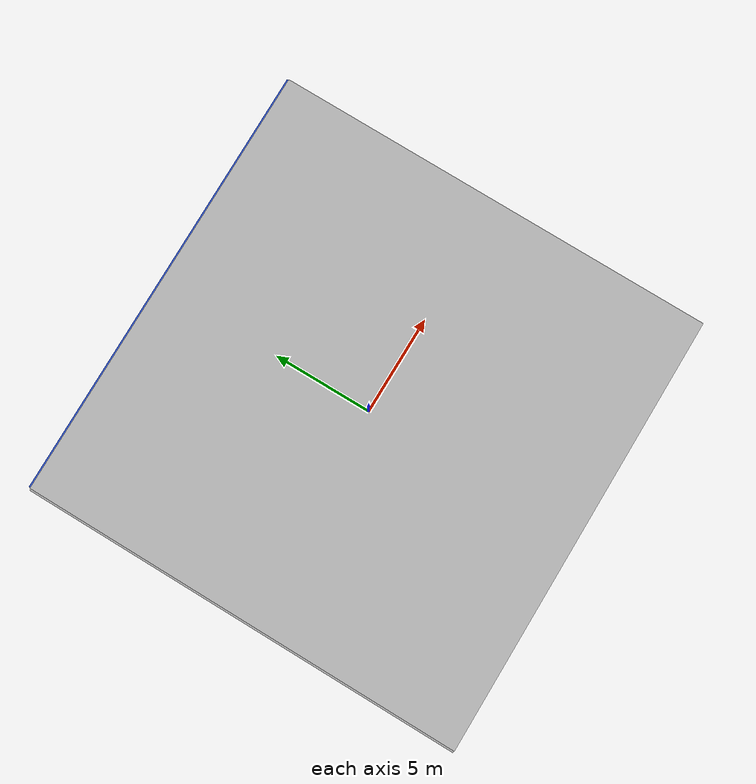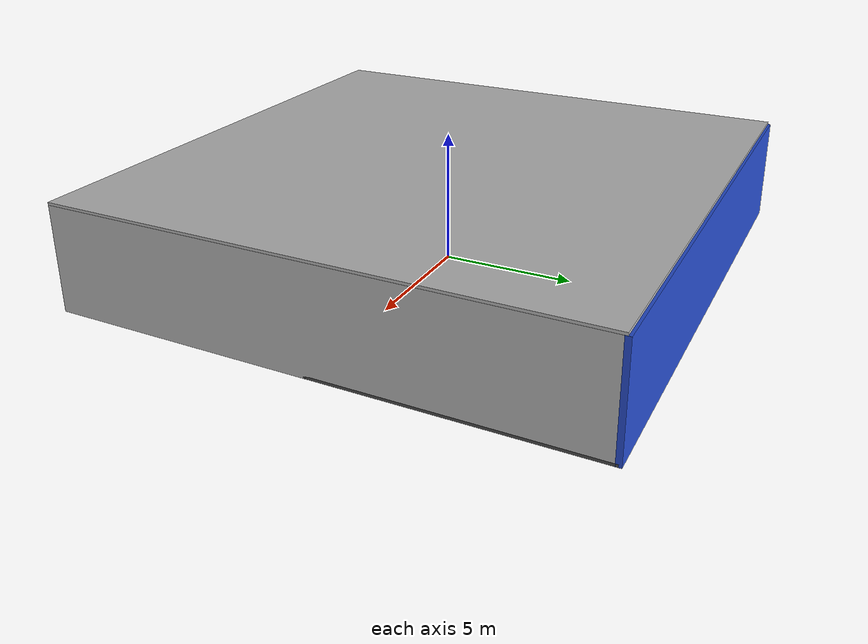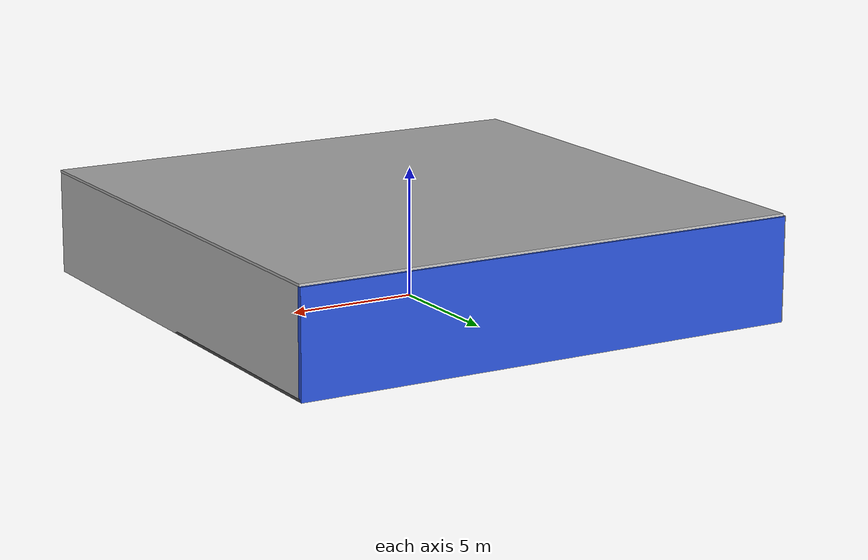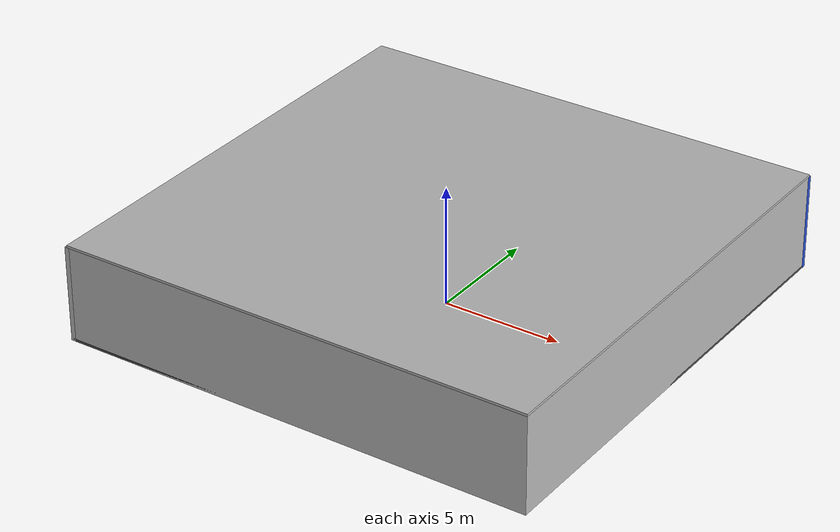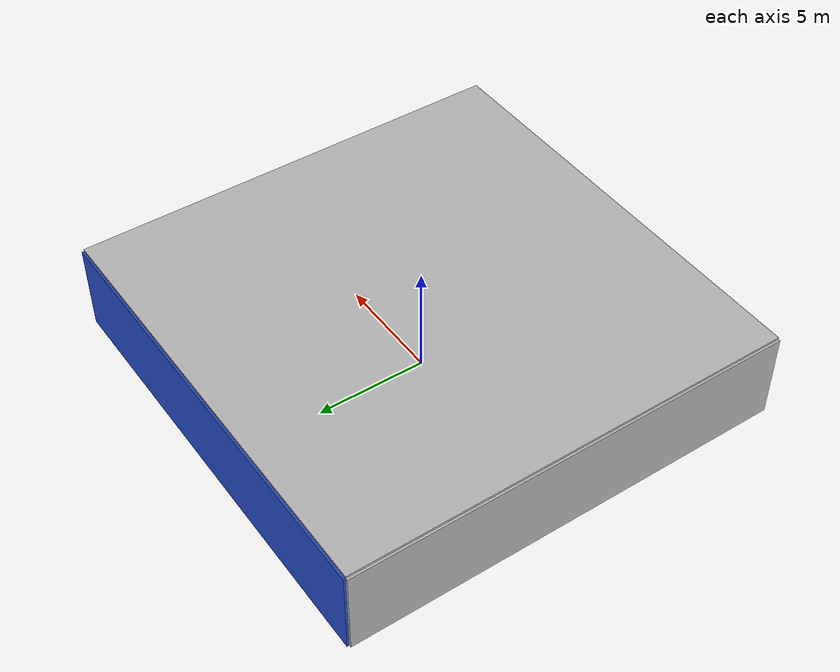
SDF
<sdf version="1.4">
 <world name="default">
  <physics type="ode">
   <max_step_size>0.001</max_step_size>
   <real_time_factor>1</real_time_factor>
   <real_time_update_rate>1000</real_time_update_rate>
   <gravity>0 0 -9.8</gravity>
  </physics>
  <scene><ambient>0.4 0.4 0.4 1</ambient><background>0.7 0.7 0.7 1</background><shadows>1</shadows></scene>
  <model name="Surrounding">
   <static>1</static>
   <link name="Ceiling">
    <collision name="Ceiling_Collision"><geometry><box><size>20 20 0.1</size></box></geometry></collision>
    <visual name="Ceiling_Visual">
     <geometry><box><size>20 20 0.1</size></box></geometry>
     <material>
      <script><uri>file://media/materials/scripts/gazebo.material</uri><name>Gazebo/Pioneer2Body</name></script>
     </material>
    </visual>
    <pose>0 0 4.05 0 0 0</pose>
   </link>
   <link name="Wall_South">
    <collision name="Wall_South_Collision">
     <geometry><box><size>20 0 4</size></box></geometry>
     <pose>0 0 2 0 -0 0</pose>
    </collision>
    <visual name="Wall_South_Visual">
     <pose>0 0 2 0 -0 0</pose>
     <geometry><box><size>20 0 4</size></box></geometry>
     <material>
      <script><uri>file://media/materials/scripts/gazebo.material</uri><name>Gazebo/PioneerBody</name></script>
     </material>
    </visual>
    <velocity_decay><linear>0</linear><angular>0</angular></velocity_decay>
    <pose>0 -10 0 0 -0 0</pose>
   </link>
   <link name="Wall_East">
    <collision name="Wall_21_Collision">
     <geometry><box><size>20 0 4</size></box></geometry>
     <pose>0 0 2 0 -0 0</pose>
    </collision>
    <visual name="Wall_21_Visual">
     <pose>0 0 2 0 -0 0</pose>
     <geometry><box><size>20 0 4</size></box></geometry>
     <material>
      <script><uri>file://media/materials/scripts/gazebo.material</uri><name>Gazebo/PioneerBody</name></script>
     </material>
    </visual>
    <velocity_decay><linear>0</linear><angular>0</angular></velocity_decay>
    <pose>10 0 0 0 -0 1.5708</pose>
   </link>
   <link name="Wall_North">
    <collision name="Wall_22_Collision">
     <geometry><box><size>20 0.2 4</size></box></geometry>
     <pose>0 0 2 0 -0 0</pose>
    </collision>
    <visual name="Wall_22_Visual">
     <pose>0 0 2 0 -0 0</pose>
     <geometry><box><size>20 0.2 4</size></box></geometry>
     <material>
      <script><uri>file://media/materials/scripts/gazebo.material</uri><name>Gazebo/Blue</name></script>
     </material>
    </visual>
    <velocity_decay><linear>0</linear><angular>0</angular></velocity_decay>
    <pose>0 10 0 0 -0 0</pose>
   </link>
   <link name="Wall_West">
    <collision name="Wall_23_Collision">
     <geometry><box><size>20 0.2 4</size></box></geometry>
     <pose>0 0 2 0 -0 0</pose>
    </collision>
    <visual name="Wall_23_Visual">
     <pose>0 0 2 0 -0 0</pose>
     <geometry><box><size>20 0.2 4</size></box></geometry>
     <material>
      <script><uri>file://media/materials/scripts/gazebo.material</uri><name>Gazebo/PioneerBody</name></script>
     </material>
    </visual>
    <velocity_decay><linear>0</linear><angular>0</angular></velocity_decay>
    <pose>-10 0 0 0 0 -1.5708</pose>
   </link>
   <link name="Ground_link">
    <collision name="collision">
     <pose>0 0 .05 0 -0 0</pose>
     <geometry><box><size>20 20 0.1</size></box></geometry>
    </collision>
    <visual name="visual">
     <pose>0 0 .05 0 -0 0</pose>
     <geometry><box><size>20 20 0.1</size></box></geometry>
     <material>
      <script><uri>file://media/materials/scripts/gazebo.material</uri><name>Gazebo/Road</name></script>
     </material>
    </visual>
   </link>
   <static>1</static>
  </model>
  <spherical_coordinates>
   <surface_model>EARTH_WGS84</surface_model>
   <latitude_deg>0</latitude_deg>
   <longitude_deg>0</longitude_deg>
   <elevation>0</elevation>
   <heading_deg>0</heading_deg>
  </spherical_coordinates>
  <light name="lightball_0" type="diffuse">
   <diffuse>0.8 0.8 0.8 1</diffuse>
   <specular>0.2 0.2 0.2 1</specular>
   <attenuation>
    <range>100</range>
    <constant>0.7</constant>
    <linear>0.01</linear>
    <quadratic>0.001</quadratic>
   </attenuation>
   <direction>-0.5 0.1 -0.9</direction>
   <pose>-8.07705943138 -3.77885883179 3.25741609197 0 0 0</pose>
  </light>
  <light name="lightball_1" type="diffuse">
   <diffuse>0.8 0.8 0.8 1</diffuse>
   <specular>0.2 0.2 0.2 1</specular>
   <attenuation>
    <range>100</range>
    <constant>0.7</constant>
    <linear>0.01</linear>
    <quadratic>0.001</quadratic>
   </attenuation>
   <direction>-0.5 0.1 -0.9</direction>
   <pose>6.31597942116 9.14380771476 0.563957334687 0 0 0</pose>
  </light>
  <light name="lightball_2" type="diffuse">
   <diffuse>0.8 0.8 0.8 1</diffuse>
   <specular>0.2 0.2 0.2 1</specular>
   <attenuation>
    <range>100</range>
    <constant>0.7</constant>
    <linear>0.01</linear>
    <quadratic>0.001</quadratic>
   </attenuation>
   <direction>-0.5 0.1 -0.9</direction>
   <pose>6.11982953351 -4.17705933734 1.52395109297 0 0 0</pose>
  </light>
  <light name="lightball_3" type="diffuse">
   <diffuse>0.8 0.8 0.8 1</diffuse>
   <specular>0.2 0.2 0.2 1</specular>
   <attenuation>
    <range>100</range>
    <constant>0.7</constant>
    <linear>0.01</linear>
    <quadratic>0.001</quadratic>
   </attenuation>
   <direction>-0.5 0.1 -0.9</direction>
   <pose>-1.56065368642 2.81239137793 0.915741536366 0 0 0</pose>
  </light>
  <light name="lightball_4" type="diffuse">
   <diffuse>0.8 0.8 0.8 1</diffuse>
   <specular>0.2 0.2 0.2 1</specular>
   <attenuation>
    <range>100</range>
    <constant>0.7</constant>
    <linear>0.01</linear>
    <quadratic>0.001</quadratic>
   </attenuation>
   <direction>-0.5 0.1 -0.9</direction>
   <pose>7.27996927702 -5.38961997916 1.40322186942 0 0 0</pose>
  </light>
  <include>
   <uri>model://construction_cone</uri>
   <pose>-5.58955748152 4.25687741665 0 0 0 2.56587450043</pose>
  </include>
  <include><uri>model://table</uri><pose>2.49906765777 -0.426005962961 0 0 0 0.918912492862</pose></include>
  <include><uri>model://cabinet</uri><pose>4.87668203164 -5.19257144639 0 0 0 0.419405646287</pose></include>
 </world>
</sdf>

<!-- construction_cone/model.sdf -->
<sdf version="1.5">
  <model name="Construction Cone">
    <link name="link">
      <collision name="collision">
        <geometry>
          <mesh>
            <scale>10 10 10</scale>
            <uri>file://isr-testbed/construction_cone/meshes/construction_cone.dae</uri>
          </mesh>
        </geometry>
      </collision>
      <visual name="visual">
        <geometry>
          <mesh>
            <scale>10 10 10</scale>
            <uri>file://isr-testbed/construction_cone/meshes/construction_cone.dae</uri>
          </mesh>
        </geometry>
      </visual>
    </link>
  </model>
</sdf>

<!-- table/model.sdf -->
<sdf version="1.5">
  <model name="table">
    <static>true</static>
    <link name="link">
      <collision name="surface">
        <pose>0 0 1.0 0 0 0</pose>
        <geometry>
          <box>
            <size>1.5 0.8 0.03</size>
          </box>
        </geometry>
        <surface>
          <friction>
            <ode>
              <mu>0.6</mu>
              <mu2>0.6</mu2>
            </ode>
          </friction>
        </surface>
      </collision>
      <visual name="visual1">
        <pose>0 0 1.0 0 0 0</pose>
        <geometry>
          <box>
            <size>1.5 0.8 0.03</size>
          </box>
        </geometry>
        <material>
          <script>
            <uri>model://media/materials/scripts/gazebo.material</uri>
            <name>Gazebo/Wood</name>
          </script>
        </material>
      </visual>
      <collision name="front_left_leg">
        <pose>0.68 0.38 0.5 0 0 0</pose>
        <geometry>
          <cylinder>
            <radius>0.02</radius>
            <length>1.0</length>
          </cylinder>
        </geometry>
      </collision>
      <visual name="front_left_leg">
        <pose>0.68 0.38 0.5 0 0 0</pose>
        <geometry>
          <cylinder>
            <radius>0.02</radius>
            <length>1.0</length>
          </cylinder>
        </geometry>
        <material>
          <script>
            <uri>model://media/materials/scripts/gazebo.material</uri>
            <name>Gazebo/Grey</name>
          </script>
        </material>
      </visual>
      <collision name="front_right_leg">
        <pose>0.68 -0.38 0.5 0 0 0</pose>
        <geometry>
          <cylinder>
            <radius>0.02</radius>
            <length>1.0</length>
          </cylinder>
        </geometry>
      </collision>
      <visual name="front_right_leg">
        <pose>0.68 -0.38 0.5 0 0 0</pose>
        <geometry>
          <cylinder>
            <radius>0.02</radius>
            <length>1.0</length>
          </cylinder>
        </geometry>
        <material>
          <script>
            <uri>model://media/materials/scripts/gazebo.material</uri>
            <name>Gazebo/Grey</name>
          </script>
        </material>
      </visual>
      <collision name="back_right_leg">
        <pose>-0.68 -0.38 0.5 0 0 0</pose>
        <geometry>
          <cylinder>
            <radius>0.02</radius>
            <length>1.0</length>
          </cylinder>
        </geometry>
      </collision>
      <visual name="back_right_leg">
        <pose>-0.68 -0.38 0.5 0 0 0</pose>
        <geometry>
          <cylinder>
            <radius>0.02</radius>
            <length>1.0</length>
          </cylinder>
        </geometry>
        <material>
          <script>
            <uri>model://media/materials/scripts/gazebo.material</uri>
            <name>Gazebo/Grey</name>
          </script>
        </material>
      </visual>
      <collision name="back_left_leg">
        <pose>-0.68 0.38 0.5 0 0 0</pose>
        <geometry>
          <cylinder>
            <radius>0.02</radius>
            <length>1.0</length>
          </cylinder>
        </geometry>
      </collision>
      <visual name="back_left_leg">
        <pose>-0.68 0.38 0.5 0 0 0</pose>
        <geometry>
          <cylinder>
            <radius>0.02</radius>
            <length>1.0</length>
          </cylinder>
        </geometry>
        <material>
          <script>
            <uri>model://media/materials/scripts/gazebo.material</uri>
            <name>Gazebo/Grey</name>
          </script>
        </material>
      </visual>
    </link>
  </model>
</sdf>

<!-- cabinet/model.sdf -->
<sdf version="1.5">
  <model name="cabinet">
    <static>true</static>
    <link name="cabinet_bottom_plate">
      <inertial>
        <pose>0 0 -1 0 0 0</pose>
        <inertia>
          <ixx>2.050000</ixx>
          <ixy>0</ixy>
          <ixz>0</ixz>
          <iyy>2.050000</iyy>
          <iyz>0</iyz>
          <izz>2.050000</izz>
        </inertia>
        <mass>25.000000</mass>
      </inertial>
      <collision name="cabinet_bottom_plate_geom">
        <pose>0 0 0.010000 0 0 0</pose>
        <geometry>
          <box>
            <size>0.450000 0.450000 0.020000</size>
          </box>
        </geometry>
      </collision>
      <visual name="cabinet_bottom_plate_geom_visual">
        <pose>0 0 0.010000 0 0 0</pose>
        <geometry>
          <box>
            <size>0.450000 0.450000 0.020000</size>
          </box>
        </geometry>
        <material>
          <script>
            <uri>model://media/materials/scripts/gazebo.material</uri>
            <name>Gazebo/Wood</name>
          </script>
        </material>
      </visual>
      <collision name="cabinet_bottom_plate_geom_cabinet_back_plate">
        <pose>0.235000 0 0.510000 0 0 0</pose>
        <geometry>
          <box>
            <size>0.020000 0.450000 1.020000</size>
          </box>
        </geometry>
      </collision>
      <visual name="cabinet_bottom_plate_geom_cabinet_back_plate_visual">
        <pose>0.235000 0 0.510000 0 0 0</pose>
        <geometry>
          <box>
            <size>0.020000 0.450000 1.020000</size>
          </box>
        </geometry>
        <material>
          <script>
            <uri>model://media/materials/scripts/gazebo.material</uri>
            <name>Gazebo/Wood</name>
          </script>
        </material>
      </visual>
      <collision name="cabinet_bottom_plate_geom_cabinet_left_plate">
        <pose>0 0.235000 0.510000 0 0 0</pose>
        <geometry>
          <box>
            <size>0.450000 0.020000 1.020000</size>
          </box>
        </geometry>
      </collision>
      <visual name="cabinet_bottom_plate_geom_cabinet_left_plate_visual">
        <pose>0 0.235000 0.510000 0 0 0</pose>
        <geometry>
          <box>
            <size>0.450000 0.020000 1.020000</size>
          </box>
        </geometry>
        <material>
          <script>
            <uri>model://media/materials/scripts/gazebo.material</uri>
            <name>Gazebo/Wood</name>
          </script>
        </material>
      </visual>
      <collision name="cabinet_bottom_plate_geom_cabinet_middle_plate">
        <pose>0 0 0.510000 0 0 0</pose>
        <geometry>
          <box>
            <size>0.450000 0.450000 0.020000</size>
          </box>
        </geometry>
      </collision>
      <visual name="cabinet_bottom_plate_geom_cabinet_middle_plate_visual">
        <pose>0 0 0.510000 0 0 0</pose>
        <geometry>
          <box>
            <size>0.450000 0.450000 0.020000</size>
          </box>
        </geometry>
        <material>
          <script>
            <uri>model://media/materials/scripts/gazebo.material</uri>
            <name>Gazebo/Wood</name>
          </script>
        </material>
      </visual>
      <collision name="cabinet_bottom_plate_geom_cabinet_right_plate">
        <pose>0 -0.235000 0.510000 0 0 0</pose>
        <geometry>
          <box>
            <size>0.450000 0.020000 1.020000</size>
          </box>
        </geometry>
      </collision>
      <visual name="cabinet_bottom_plate_geom_cabinet_right_plate_visual">
        <pose>0 -0.235000 0.510000 0 0 0</pose>
        <geometry>
          <box>
            <size>0.450000 0.020000 1.020000</size>
          </box>
        </geometry>
        <material>
          <script>
            <uri>model://media/materials/scripts/gazebo.material</uri>
            <name>Gazebo/Wood</name>
          </script>
        </material>
      </visual>
      <collision name="cabinet_bottom_plate_geom_cabinet_top_plate">
        <pose>0 0 1.010000 0 0 0</pose>
        <geometry>
          <box>
            <size>0.450000 0.450000 0.020000</size>
          </box>
        </geometry>
      </collision>
      <visual name="cabinet_bottom_plate_geom_cabinet_top_plate_visual">
        <pose>0 0 1.010000 0 0 0</pose>
        <geometry>
          <box>
            <size>0.450000 0.450000 0.020000</size>
          </box>
        </geometry>
        <material>
          <script>
            <uri>model://media/materials/scripts/gazebo.material</uri>
            <name>Gazebo/Wood</name>
          </script>
        </material>
      </visual>
    </link>
  </model>
</sdf>
